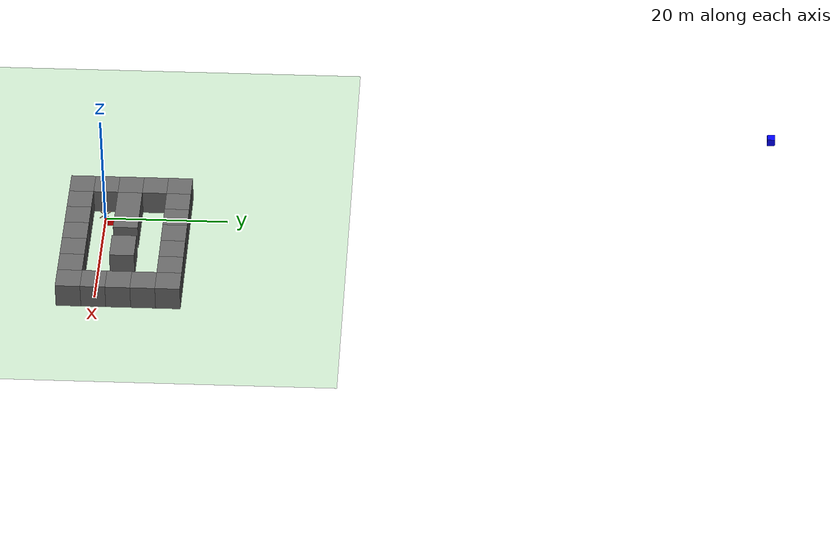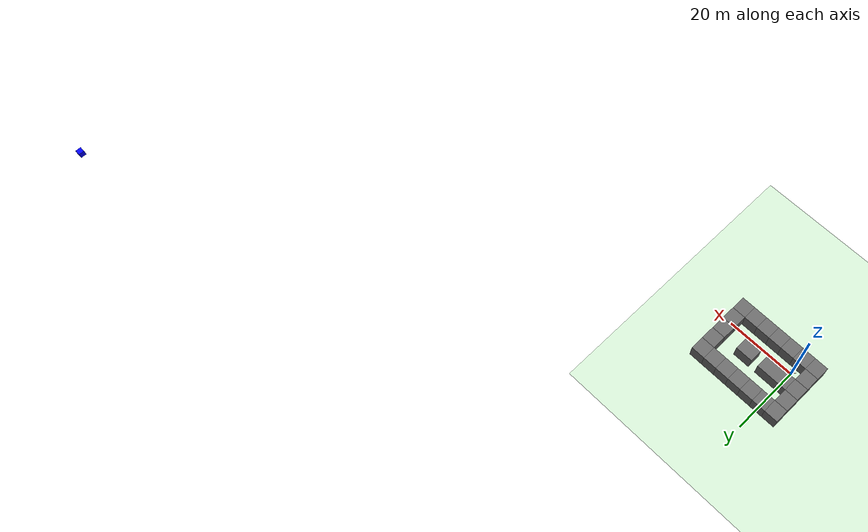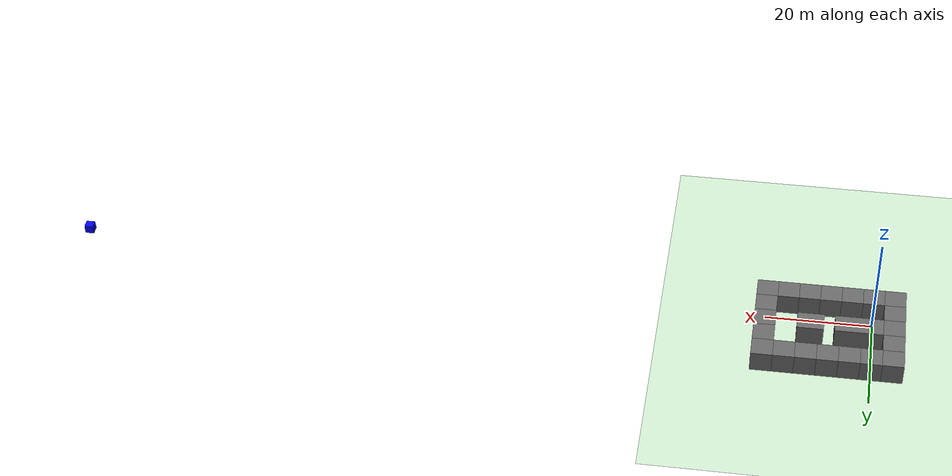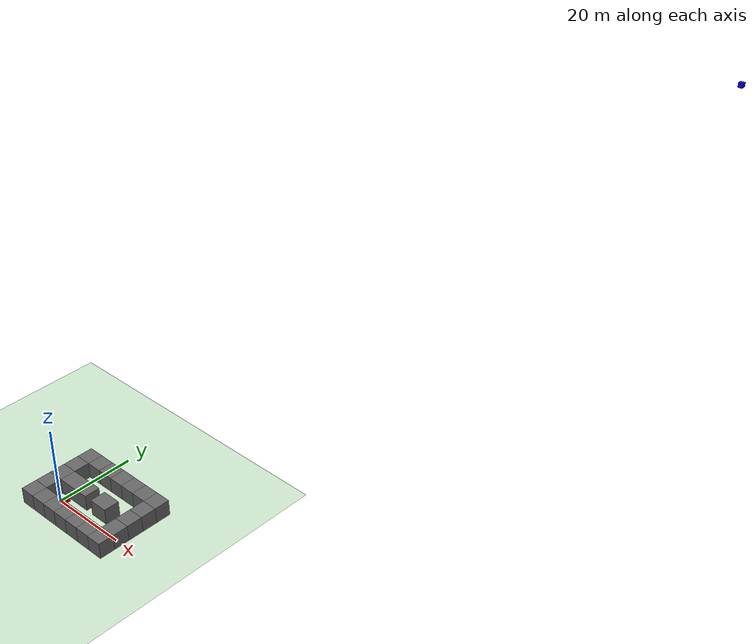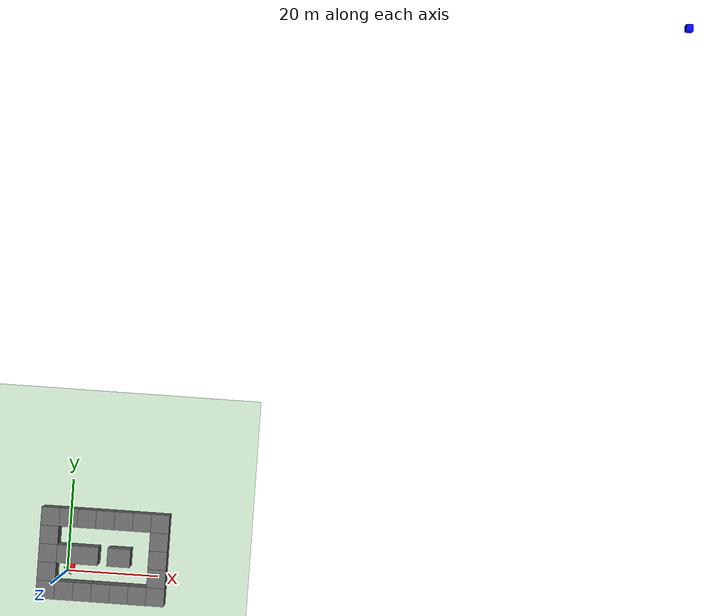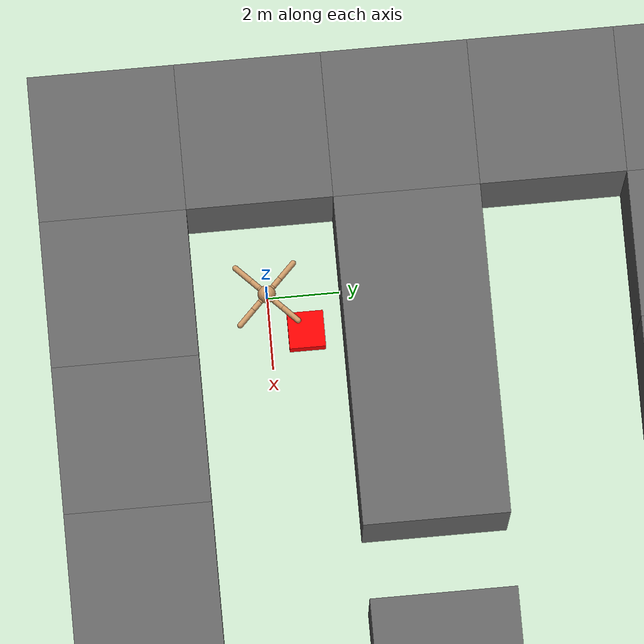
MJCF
<mujoco model="ant">
  <compiler inertiafromgeom="true" angle="degree" coordinate="local" />
  <option timestep="0.02" integrator="RK4" />
  <custom>
    <numeric name="init_qpos" data="0.0 0.0 0.55 1.0 0.0 0.0 0.0 0.0 1.0 0.0 -1.0 0.0 -1.0 0.0 1.0" />
  </custom>
  <default>
    <joint limited="true" armature="1" damping="1" />
    <geom condim="3" conaffinity="0" margin="0.01" friction="1 0.5 0.5" solref=".02 1" solimp=".8 .8 .01" rgba="0.8 0.6 0.4 1" density="5.0" />
  </default>
  <asset>
    <texture type="skybox" builtin="gradient" width="100" height="100" rgb1="1 1 1" rgb2="0 0 0" />
    <texture name="texgeom" type="cube" builtin="flat" mark="cross" width="127" height="1278" rgb1="0.8 0.6 0.4" rgb2="0.8 0.6 0.4" markrgb="1 1 1" random="0.01" />
    <texture name="texplane" type="2d" builtin="checker" rgb1="0 0 0" rgb2="0.8 0.8 0.8" width="100" height="100" />
    <material name='MatPlane' texture="texplane" shininess="1" texrepeat="60 60" specular="1"  reflectance="0.5" />
    <material name='geom' texture="texgeom" texuniform="true" />
  </asset>
  <worldbody>
    <light directional="true" cutoff="100" exponent="1" diffuse="1 1 1" specular=".1 .1 .1" pos="0 0 1.3" dir="-0 0 -1.3" />
    <geom name='floor' pos='0 0 0' size='40 40 40' type='plane' conaffinity='1' rgba='0.8 0.9 0.8 1' condim='3' />
    <body name="torso" pos="0 0 0.75">
      <geom name="torso_geom" type="sphere" size="0.25" pos="0 0 0" />
      <joint name="root" type="free" limited="false" pos="0 0 0" axis="0 0 1" margin="0.01" armature="0" damping="0" />
      <body name="front_left_leg" pos="0 0 0">
        <geom name="aux_1_geom" type="capsule" size="0.08" fromto="0.0 0.0 0.0 0.2 0.2 0.0" />
        <body name="aux_1" pos="0.2 0.2 0">
          <joint name="hip_1" type="hinge" pos="0.0 0.0 0.0" axis="0 0 1" range="-30 30" />
          <geom name="left_leg_geom" type="capsule" size="0.08" fromto="0.0 0.0 0.0 0.2 0.2 0.0" />
          <body pos="0.2 0.2 0">
            <joint name="ankle_1" type="hinge" pos="0.0 0.0 0.0" axis="-1 1 0" range="30 70" />
            <geom name="left_ankle_geom" type="capsule" size="0.08" fromto="0.0 0.0 0.0 0.4 0.4 0.0" />
          </body>
        </body>
      </body>
      <body name="front_right_leg" pos="0 0 0">
        <geom name="aux_2_geom" type="capsule" size="0.08" fromto="0.0 0.0 0.0 -0.2 0.2 0.0" />
        <body name="aux_2" pos="-0.2 0.2 0">
          <joint name="hip_2" type="hinge" pos="0.0 0.0 0.0" axis="0 0 1" range="-30 30" />
          <geom name="right_leg_geom" type="capsule" size="0.08" fromto="0.0 0.0 0.0 -0.2 0.2 0.0" />
          <body pos="-0.2 0.2 0">
            <joint name="ankle_2" type="hinge" pos="0.0 0.0 0.0" axis="1 1 0" range="-70 -30" />
            <geom name="right_ankle_geom" type="capsule" size="0.08" fromto="0.0 0.0 0.0 -0.4 0.4 0.0" />
          </body>
        </body>
      </body>
      <body name="back_leg" pos="0 0 0">
        <geom name="aux_3_geom" type="capsule" size="0.08" fromto="0.0 0.0 0.0 -0.2 -0.2 0.0" />
        <body name="aux_3" pos="-0.2 -0.2 0">
          <joint name="hip_3" type="hinge" pos="0.0 0.0 0.0" axis="0 0 1" range="-30 30" />
          <geom name="back_leg_geom" type="capsule" size="0.08" fromto="0.0 0.0 0.0 -0.2 -0.2 0.0" />
          <body pos="-0.2 -0.2 0">
            <joint name="ankle_3" type="hinge" pos="0.0 0.0 0.0" axis="-1 1 0" range="-70 -30" />
            <geom name="third_ankle_geom" type="capsule" size="0.08" fromto="0.0 0.0 0.0 -0.4 -0.4 0.0" />
          </body>
        </body>
      </body>
      <body name="right_back_leg" pos="0 0 0">
        <geom name="aux_4_geom" type="capsule" size="0.08" fromto="0.0 0.0 0.0 0.2 -0.2 0.0" />
        <body name="aux_4" pos="0.2 -0.2 0">
          <joint name="hip_4" type="hinge" pos="0.0 0.0 0.0" axis="0 0 1" range="-30 30" />
          <geom name="rightback_leg_geom" type="capsule" size="0.08" fromto="0.0 0.0 0.0 0.2 -0.2 0.0" />
          <body pos="0.2 -0.2 0">
            <joint name="ankle_4" type="hinge" pos="0.0 0.0 0.0" axis="1 1 0" range="30 70" />
            <geom name="fourth_ankle_geom" type="capsule" size="0.08" fromto="0.0 0.0 0.0 0.4 -0.4 0.0" />
          </body>
        </body>
      </body>
    </body>

    <body name="goal_point" pos="1.0 1.0 0.12"> <!--name was ee_link--> <!--euler = "-1.570796 0 0"-->
      <site name="goal_point:box" type="box" pos="0.05 0.0 0.0" size="0.5 0.5 0.5"  quat = " 1.0 0.0  0.0 0."     rgba="1 0 0 1" />
    </body>
    <body name="subgoal_point" pos="1.0 1.0 0.12"> <!--name was ee_link--> <!--euler = "-1.570796 0 0"-->
      <site name="subgoal_point:box" type="box" pos="100.0 100.0 100.0" size="0.5 0.5 0.5"  quat = " 1.0 0.0  0.0 0."     rgba="0 0 1 1" />
    </body>
    <body name="way_point0" pos="1.0 1.0 0.12"> <!--name was ee_link--> <!--euler = "-1.570796 0 0"-->
      <site name="way_point:box0" type="box" pos="0.05 0.0 0.0" size="0.5 0.5 0.5"  quat = " 1.0 0.0  0.0 0."     rgba="0 0 1 1" />
    </body>
    <body name="way_point1" pos="1.0 1.0 0.12"> <!--name was ee_link--> <!--euler = "-1.570796 0 0"-->
      <site name="way_point:box1" type="box" pos="0.05 0.0 0.0" size="0.5 0.5 0.5"  quat = " 1.0 0.0  0.0 0."     rgba="0 0 1 1" />
    </body>
    <body name="way_point2" pos="1.0 1.0 0.12"> <!--name was ee_link--> <!--euler = "-1.570796 0 0"-->
      <site name="way_point:box2" type="box" pos="0.05 0.0 0.0" size="0.5 0.5 0.5"  quat = " 1.0 0.0  0.0 0."     rgba="0 0 1 1" />
    </body>
    <body name="way_point3" pos="1.0 1.0 0.12"> <!--name was ee_link--> <!--euler = "-1.570796 0 0"-->
      <site name="way_point:box3" type="box" pos="0.05 0.0 0.0" size="0.5 0.5 0.5"  quat = " 1.0 0.0  0.0 0."     rgba="0 0 1 1" />
    </body>

    <body name="wall" pos="0.0 0.0 0.0">
      <geom name="wall1" type="box" pos="-4 -4 0" size="2 2 4" rgba="0.4 0.4 0.4 1"
                contype="1" conaffinity="1" friction="2 0.1 0.002"/>
      <geom name="wall2" type="box" pos="-4 0 0" size="2 2 4" rgba="0.4 0.4 0.4 1"
                contype="1" conaffinity="1" friction="2 0.1 0.002"/>
      <geom name="wall4" type="box" pos="-4 4 0" size="2 2 4" rgba="0.4 0.4 0.4 1"
                contype="1" conaffinity="1" friction="2 0.1 0.002"/>
      <geom name="wall5" type="box" pos="-4 8 0" size="2 2 4" rgba="0.4 0.4 0.4 1"
                contype="1" conaffinity="1" friction="2 0.1 0.002"/>
      <geom name="wall6" type="box" pos="-4 12 0" size="2 2 4" rgba="0.4 0.4 0.4 1"
                contype="1" conaffinity="1" friction="2 0.1 0.002"/>
      <geom name="wall7" type="box" pos="0 -4 0" size="2 2 4" rgba="0.4 0.4 0.4 1"
                contype="1" conaffinity="1" friction="2 0.1 0.002"/>
      <geom name="wall8" type="box" pos="4 -4 0" size="2 2 4" rgba="0.4 0.4 0.4 1"
                contype="1" conaffinity="1" friction="2 0.1 0.002"/>
      <geom name="wall9" type="box" pos="8 -4 0" size="2 2 4" rgba="0.4 0.4 0.4 1"
                contype="1" conaffinity="1" friction="2 0.1 0.002"/>
      <geom name="wall10" type="box" pos="12 -4 0" size="2 2 4" rgba="0.4 0.4 0.4 1"
                contype="1" conaffinity="1" friction="2 0.1 0.002"/>
      <geom name="wall11" type="box" pos="16 -4 0" size="2 2 4" rgba="0.4 0.4 0.4 1"
                contype="1" conaffinity="1" friction="2 0.1 0.002"/>
      <geom name="wall12" type="box" pos="20 -4 0" size="2 2 4" rgba="0.4 0.4 0.4 1"
                contype="1" conaffinity="1" friction="2 0.1 0.002"/>
      <geom name="wall13" type="box" pos="0 12 0" size="2 2 4" rgba="0.4 0.4 0.4 1"
                contype="1" conaffinity="1" friction="2 0.1 0.002"/>
      <geom name="wall14" type="box" pos="4 12 0" size="2 2 4" rgba="0.4 0.4 0.4 1"
                contype="1" conaffinity="1" friction="2 0.1 0.002"/>
      <geom name="wall15" type="box" pos="8 12  0" size="2 2 4" rgba="0.4 0.4 0.4 1"
                contype="1" conaffinity="1" friction="2 0.1 0.002"/>
      <geom name="wall16" type="box" pos="12 12 0" size="2 2 4" rgba="0.4 0.4 0.4 1"
                contype="1" conaffinity="1" friction="2 0.1 0.002"/>
      <geom name="wall17" type="box" pos="16 12 0" size="2 2 4" rgba="0.4 0.4 0.4 1"
                contype="1" conaffinity="1" friction="2 0.1 0.002"/>
      <geom name="wall18" type="box" pos="20 12 0" size="2 2 4" rgba="0.4 0.4 0.4 1"
                contype="1" conaffinity="1" friction="2 0.1 0.002"/>
      <geom name="wall19" type="box" pos="20 8 0" size="2 2 4" rgba="0.4 0.4 0.4 1"
                contype="1" conaffinity="1" friction="2 0.1 0.002"/>
      <geom name="wall20" type="box" pos="20 4 0" size="2 2 4" rgba="0.4 0.4 0.4 1"
                contype="1" conaffinity="1" friction="2 0.1 0.002"/>
      <geom name="wall21" type="box" pos="20 0 0" size="2 2 4" rgba="0.4 0.4 0.4 1"
                contype="1" conaffinity="1" friction="2 0.1 0.002"/>
      <geom name="wall22" type="box" pos="11.5 4 0" size="2.5 2 4" rgba="0.4 0.4 0.4 1"
                contype="1" conaffinity="1" friction="2 0.1 0.002"/>
      <geom name="wall23" type="box" pos="2.5 4 0" size="4.5 2 4" rgba="0.4 0.4 0.4 1"
                contype="1" conaffinity="1" friction="2 0.1 0.002"/>
    </body>

  </worldbody>
  <actuator>
    <motor joint="hip_4" ctrlrange="-30.0 30.0" ctrllimited="true" />
    <motor joint="ankle_4" ctrlrange="-30.0 30.0" ctrllimited="true" />
    <motor joint="hip_1" ctrlrange="-30.0 30.0" ctrllimited="true" />
    <motor joint="ankle_1" ctrlrange="-30.0 30.0" ctrllimited="true" />
    <motor joint="hip_2" ctrlrange="-30.0 30.0" ctrllimited="true" />
    <motor joint="ankle_2" ctrlrange="-30.0 30.0" ctrllimited="true" />
    <motor joint="hip_3" ctrlrange="-30.0 30.0" ctrllimited="true" />
    <motor joint="ankle_3" ctrlrange="-30.0 30.0" ctrllimited="true" />
  </actuator>
</mujoco>
